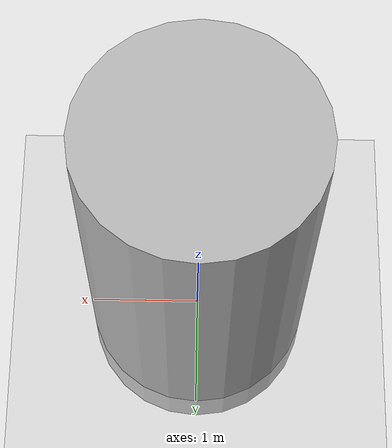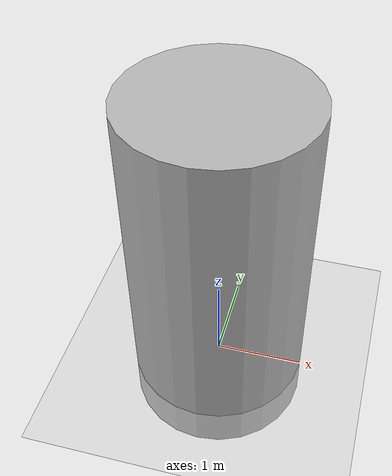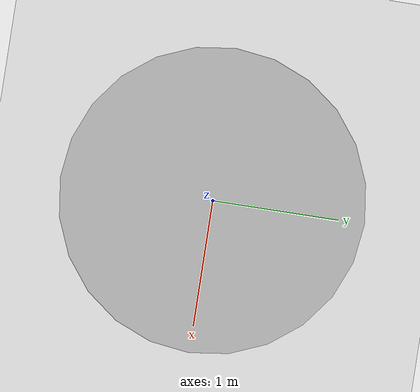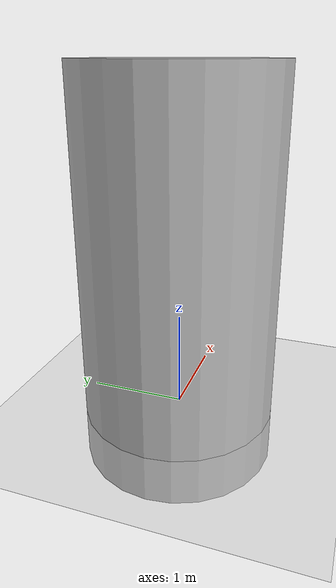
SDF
<?xml version="1.0" ?>
<sdf version="1.4">
  <world name="default">

    <!-- A global light source -->
    <light name='sun' type='directional'>
      <cast_shadows>1</cast_shadows>
      <pose frame=''>0 0 10 3.14 3.14 0</pose>
      <diffuse>0.8 0.8 0.8 1</diffuse>
      <specular>0.1 0.1 0.1 1</specular>
      <attenuation>
        <range>1000</range>
        <constant>0.9</constant>
        <linear>0.01</linear>
        <quadratic>0.001</quadratic>
      </attenuation>
      <direction>-0.5 0.5 -1</direction>
    </light>

    <!-- A ground plane -->
    <include>
      <uri>model://ground_plane</uri>
    </include>

    <!-- object of interrest -->
    <include>
      <uri>model://obj_of_int</uri>
    </include>

    <!-- Only one ROS interface plugin is required per world, as any other plugin can connect a Gazebo
         topic to a ROS topic (or vise versa). -->
    <plugin name="ros_interface_plugin" filename="librotors_gazebo_ros_interface_plugin.so"/>

    <physics name='default_physics' default='0' type='ode'>
      <gravity>0 0 -9.8066</gravity>
      <ode>
        <solver>
          <type>quick</type>
          <iters>10</iters>
          <sor>1.3</sor>
          <use_dynamic_moi_rescaling>0</use_dynamic_moi_rescaling>
        </solver>
        <constraints>
          <cfm>0</cfm>
          <erp>0.2</erp>
          <contact_max_correcting_vel>100</contact_max_correcting_vel>
          <contact_surface_layer>0.001</contact_surface_layer>
        </constraints>
      </ode>
      <max_step_size>0.002</max_step_size>
      <real_time_factor>1</real_time_factor>
      <real_time_update_rate>500</real_time_update_rate>
      <magnetic_field>6e-06 2.3e-05 -4.2e-05</magnetic_field>
    </physics>

    <gui fullscreen='0'>
      <camera name='user_camera'>
        <pose frame=''>-2 -4 3 0 0.39270 0.78534</pose>
      </camera>
    </gui>

  </world>
</sdf>

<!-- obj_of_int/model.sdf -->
<sdf version="1.6">
<model name='obj_of_int'>

  <link name='cylinder_'>
    <pose>0 0 1.5 0 0 0</pose>
    <inertial>
      <mass>10</mass>
      <inertia>
        <ixx>0.166667</ixx>
        <ixy>0</ixy>
        <ixz>0</ixz>
        <iyy>0.166667</iyy>
        <iyz>0</iyz>
        <izz>0.166667</izz>
      </inertia>
    </inertial>
    <collision name='collision'>
      <geometry>
        <cylinder>
          <radius>1</radius>
          <length>3</length>
        </cylinder>
      </geometry>
      <surface>
        <friction>
          <ode>
            <mu>1.16</mu>
            <mu2>1.16</mu2>
            <slip1>0</slip1>
            <slip2>0</slip2>
          </ode>
        </friction>
      </surface>
    </collision>
    <visual name='visual'>
      <geometry>
        <cylinder>
          <radius>1</radius>
          <length>4</length>
        </cylinder>
      </geometry>
      <material>
        <script>
          <uri>model://obj_of_int/materials/scripts</uri>
          <uri>model://obj_of_int/materials/textures</uri>
          <name>obj_of_int/old_scratched_metal</name>
        </script>
      </material>
    </visual>
    <self_collide>0</self_collide>
    <kinematic>0</kinematic>
  </link>

  <joint name='ground_link' type='fixed'>
    <parent>world</parent>
    <child>cylinder_</child>
    <pose>0 0 0 0 -0 0</pose>
  </joint>

</model>
</sdf>
